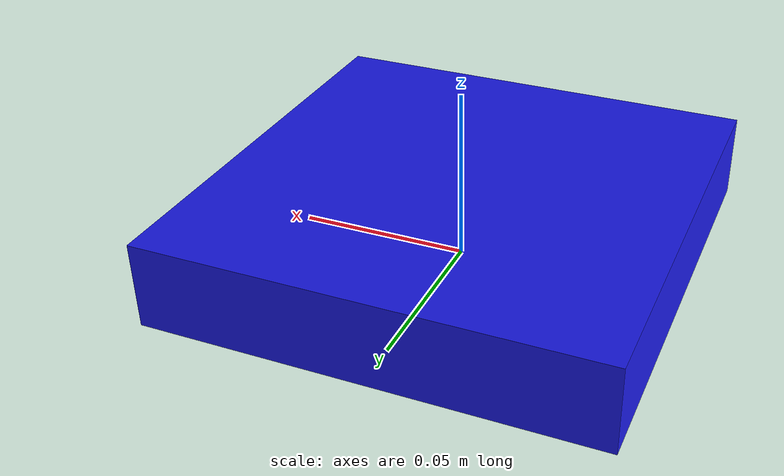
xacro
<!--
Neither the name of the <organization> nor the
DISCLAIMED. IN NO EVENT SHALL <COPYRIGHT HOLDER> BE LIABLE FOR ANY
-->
<?xml version="1.0" ?>

<!--  Copyright (c) 2011, A.M.Howard, S.Williams                                         -->
<!--  All rights reserved.                                                               -->
<!--  Redistribution and use in source and binary forms, with or without                 -->
<!--  modification, are permitted provided that the following conditions are met:        -->
<!--      * Redistributions of source code must retain the above copyright               -->
<!--        notice, this list of conditions and the following disclaimer.                -->
<!--      * Redistributions in binary form must reproduce the above copyright            -->
<!--        notice, this list of conditions and the following disclaimer in the          -->
<!--        documentation and/or other materials provided with the distribution.         -->
<!--        names of its contributors may be used to endorse or promote products         -->
<!--        derived from this software without specific prior written permission.        -->
<!--  THIS SOFTWARE IS PROVIDED BY THE COPYRIGHT HOLDERS AND CONTRIBUTORS "AS IS" AND    -->
<!--  ANY EXPRESS OR IMPLIED WARRANTIES, INCLUDING, BUT NOT LIMITED TO, THE IMPLIED      -->
<!--  WARRANTIES OF MERCHANTABILITY AND FITNESS FOR A PARTICULAR PURPOSE ARE             -->
<!--  DIRECT, INDIRECT, INCIDENTAL, SPECIAL, EXEMPLARY, OR CONSEQUENTIAL DAMAGES         -->
<!--  (INCLUDING, BUT NOT LIMITED TO, PROCUREMENT OF SUBSTITUTE GOODS OR SERVICES;       -->
<!--  LOSS OF USE, DATA, OR PROFITS; OR BUSINESS INTERRUPTION) HOWEVER CAUSED AND        -->
<!--  ON ANY THEORY OF LIABILITY, WHETHER IN CONTRACT, STRICT LIABILITY, OR TORT         -->
<!--  (INCLUDING NEGLIGENCE OR OTHERWISE) ARISING IN ANY WAY OUT OF THE USE OF THIS      -->
<!--  SOFTWARE, EVEN IF ADVISED OF THE POSSIBILITY OF SUCH DAMAGE.                       -->

<robot name="robot_base" xmlns:xacro="http://ros.org/wiki/xacro"
	xmlns:sensor="http://playerstage.sourceforge.net/gazebo/xmlschema/#sensor"
	xmlns:controller="http://playerstage.sourceforge.net/gazebo/xmlschema/#controller"
	xmlns:interface="http://playerstage.sourceforge.net/gazebo/xmlschema/#interface" >

	<!-- Create a heavy base to which to attach a Pioneer Arm -->
	<link name="base_link">
		<inertial>
			<origin xyz=" 0.00000  0.00000  0.01250" rpy=" 0.00000  0.00000  0.00000" />
			<mass value="100.0" />
			<inertia ixx="0.01" ixy="0.00" ixz="0.00" iyy="0.01" iyz="0.00" izz="0.01" />
		</inertial>

		<collision>
			<origin xyz=" 0.00000  0.00000  0.01250" rpy=" 0.00000  0.00000  0.00000" />
			<contact_coefficients mu="1.0" kp="1.0" kd="1.0" />
			<geometry>
				<box size="0.13000 0.13000 0.02500" />
			</geometry>
		</collision>

		<visual>
			<origin xyz=" 0.00000  0.00000  0.01250" rpy=" 0.00000  0.00000  0.00000" />
			<geometry>
				<box size="0.13000 0.13000 0.02500" />
			</geometry>
			<material name="base_link_color">
				<color rgba="0.1 0.1 0.9 1.0" />
			</material>
		</visual>
	</link>

	<gazebo reference="base_link">
		<material value="Gazebo/Blue" />
	</gazebo>

</robot>
